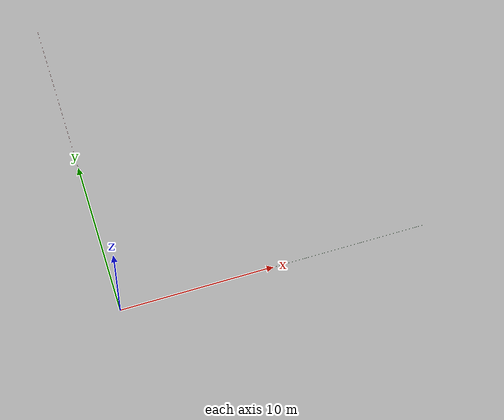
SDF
<?xml version="1.0" ?>
<sdf version="1.5">

  <world name="default">
    <!-- A global light source -->
    <light type="directional" name="sun">
        <cast_shadows>true</cast_shadows>
        <pose>0 0 2 0 0 0</pose>
        <diffuse>0.8 0.8 0.8 1</diffuse>
        <specular>0.2 0.2 0.2 1</specular>
        <attenuation>
          <range>1000</range>
          <constant>0.9</constant>
          <linear>0.01</linear>
          <quadratic>0.001</quadratic>
        </attenuation>
        <direction>-0.001 0.001 -0.9</direction>
    </light>
    <spherical_coordinates>
      <surface_model>EARTH_WGS84</surface_model>
      <latitude_deg>47.333439</latitude_deg>
      <longitude_deg>8.547097</longitude_deg>
      <elevation>1.7</elevation>
    </spherical_coordinates>
    <!-- Add World Coordinate Frame -->
    <scene>
     <origin_visual>false</origin_visual>
    </scene>
    <model name="world_frame">
      <static>true</static>
      <pose>0 0 0 0 0 0</pose>
      <link name="world_frame">
        <visual name='coordinate_x'>
        <pose>0 10 0 1.570796 0 0</pose>
        <geometry>
          <cylinder>
            <radius>0.0025</radius>
            <length>20</length>
          </cylinder>
        </geometry>
        <material>
          <script>
            <name>Gazebo/Red</name>
            <uri>file://media/materials/scripts/gazebo.material</uri>
          </script>
        </material>
      </visual>
      <visual name='coordinate_y'>
        <pose>10 0 0 0 1.570796 0</pose>
        <geometry>
          <cylinder>
            <radius>0.0025</radius>
            <length>20</length>
          </cylinder>
        </geometry>
        <material>
          <script>
            <name>Gazebo/Green</name>
            <uri>file://media/materials/scripts/gazebo.material</uri>
          </script>
        </material>
      </visual>
      <visual name='coordinate_z'>
        <pose>0 0 -10 0 0 0</pose>
        <geometry>
          <cylinder>
            <radius>0.0025</radius>
            <length>20</length>
          </cylinder>
        </geometry>
        <material>
          <script>
            <name>Gazebo/Blue</name>
            <uri>file://media/materials/scripts/gazebo.material</uri>
          </script>
        </material>
      </visual>
      </link>
    </model>
    <include>
      <uri>model://ocean</uri>
      <pose>0 0 0 0 0 0</pose>
    </include>
    <!-- Add physics -->
    <physics name='default_physics' default='0' type='ode'>
      <gravity>0 0 -9.8066</gravity>
      <ode>
        <solver>
          <type>quick</type>
          <iters>20</iters>
          <sor>1.3</sor>
          <use_dynamic_moi_rescaling>0</use_dynamic_moi_rescaling>
        </solver>
        <constraints>
          <cfm>0</cfm>
          <erp>0.2</erp>
          <contact_max_correcting_vel>100</contact_max_correcting_vel>
          <contact_surface_layer>0.001</contact_surface_layer>
        </constraints>
      </ode>
      <max_step_size>0.004</max_step_size>
      <real_time_factor>1</real_time_factor>
      <real_time_update_rate>250</real_time_update_rate>
      <magnetic_field>6.0e-6 2.3e-5 -4.2e-5</magnetic_field>
    </physics>
  </world>
</sdf>

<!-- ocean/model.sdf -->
<sdf version="1.6">
    <model name="ocean">
        <static>true</static>
        <link name="link">
            <visual name="visual">
                <geometry>
                    <mesh>
                        <uri>meshes/waterlow_small.dae</uri>
                    </mesh>
                </geometry>
                <plugin filename="gz-sim-shader-param-system" name="gz::sim::systems::ShaderParam">
                    <shader language="glsl">
                        <vertex>materials/programs/GerstnerWaves_vs_330.glsl</vertex>
                        <fragment>materials/programs/GerstnerWaves_fs_330.glsl</fragment>
                    </shader>
                    <shader language="metal">
                        <vertex>materials/programs/GerstnerWaves_vs.metal</vertex>
                        <fragment>materials/programs/GerstnerWaves_fs.metal</fragment>
                    </shader>
                    <param>
                        <shader>vertex</shader>
                        <name>Nwaves</name>
                        <type>int</type>
                        <value>0</value>
                    </param>
                    <param>
                        <shader>vertex</shader>
                        <name>rescale</name>
                        <type>float</type>
                        <value>0.125</value>
                    </param>
                    <param>
                        <shader>vertex</shader>
                        <name>bumpScale</name>
                        <type>float_array</type>
                        <value>75 75</value>
                    </param>
                    <param>
                        <shader>vertex</shader>
                        <name>bumpSpeed</name>
                        <type>float_array</type>
                        <value>0.01 0.0</value>
                    </param>
                    <param>
                        <shader>vertex</shader>
                        <name>amplitude</name>
                        <type>float_array</type>
                        <value>0.42 0.28, 0.21</value>
                    </param>
                    <param>
                        <shader>vertex</shader>
                        <name>wavenumber</name>
                        <type>float_array</type>
                        <value>0.028 0.0896 0.0504</value>
                    </param>
                    <param>
                        <shader>vertex</shader>
                        <name>omega</name>
                        <type>float_array</type>
                        <value>0.5 1.7 1.0</value>
                    </param>
                    <param>
                        <shader>vertex</shader>
                        <name>dir0</name>
                        <type>float_array</type>
                        <value>-1.0 0.0</value>
                    </param>
                    <param>
                        <shader>vertex</shader>
                        <name>dir1</name>
                        <type>float_array</type>
                        <value>-0.7 0.7</value>
                    </param>
                    <param>
                        <shader>vertex</shader>
                        <name>dir2</name>
                        <type>float_array</type>
                        <value>0.7 0.7</value>
                    </param>
                    <param>
                        <shader>vertex</shader>
                        <name>steepness</name>
                        <type>float_array</type>
                        <value>1.0 1.5 0.8</value>
                    </param>
                    <param>
                        <shader>vertex</shader>
                        <name>tau</name>
                        <type>float</type>
                        <value>2.0</value>
                    </param>
                    <param>
                        <shader>vertex</shader>
                        <name>camera_position_object_space</name>
                    </param>
                    <param>
                        <shader>vertex</shader>
                        <name>worldviewproj_matrix</name>
                    </param>
                    <param>
                        <shader>vertex</shader>
                        <name>t</name>
                        <value>TIME</value>
                    </param>
                    <param>
                        <shader>fragment</shader>
                        <name>hdrMultiplier</name>
                        <type>float</type>
                        <value>0.4</value>
                    </param>
                    <param>
                        <shader>fragment</shader>
                        <name>fresnelPower</name>
                        <type>float</type>
                        <value>5.0</value>
                    </param>
                    <param>
                        <shader>fragment</shader>
                        <name>shallowColor</name>
                        <type>float_array</type>
                        <value>0.0 0.1 0.2 1.0</value>
                    </param>
                    <param>
                        <shader>fragment</shader>
                        <name>deepColor</name>
                        <type>float_array</type>
                        <value>0.0 0.05 0.02 1.0</value>
                    </param>
                    <param>
                        <shader>fragment</shader>
                        <name>cubeMap</name>
                        <type>texture_cube</type>
                        <value>materials/textures/skybox_lowres.dds</value>
                        <!-- arg: texture coord set index -->
                        <arg>1</arg>
                    </param>
                    <param>
                        <shader>fragment</shader>
                        <name>bumpMap</name>
                        <type>texture</type>
                        <value>materials/textures/wave_normals.dds</value>
                    </param>
                </plugin>
            </visual>
        </link>
    </model>
</sdf>
